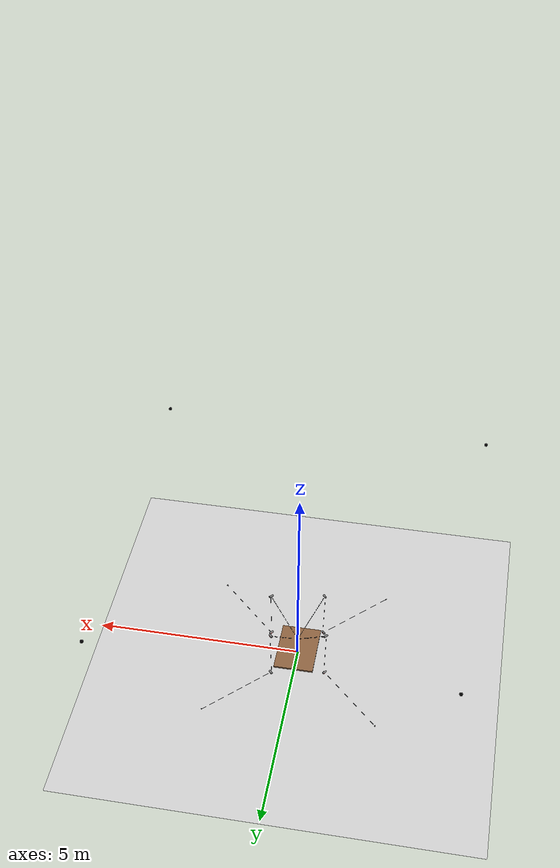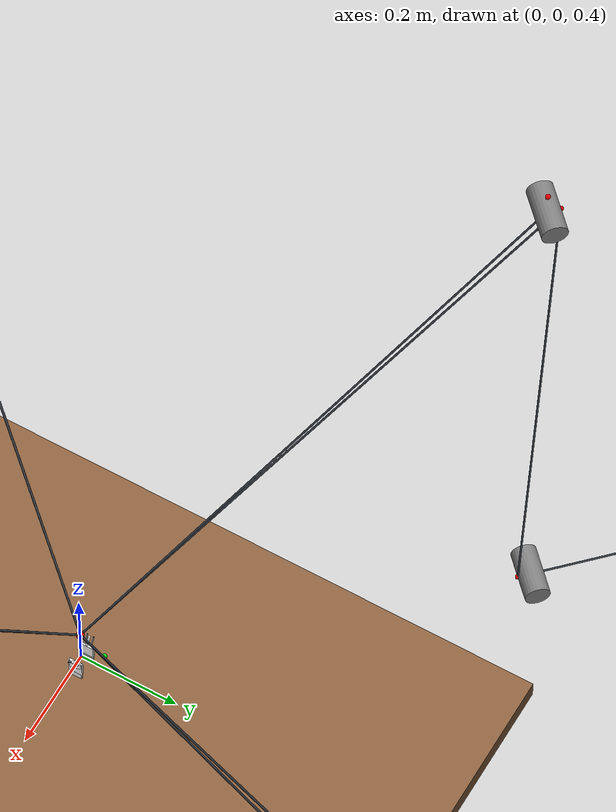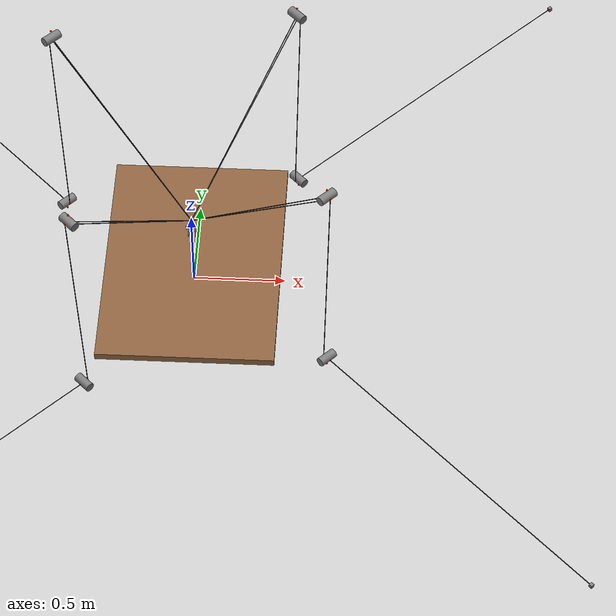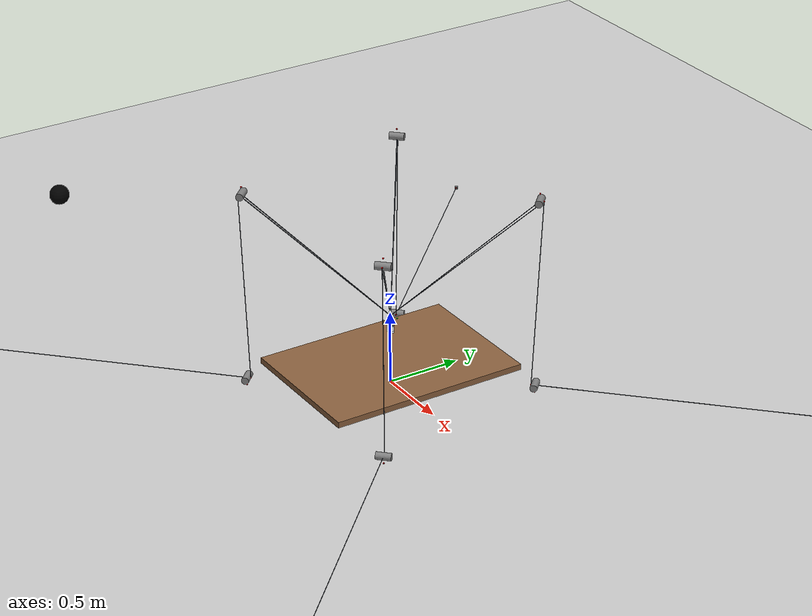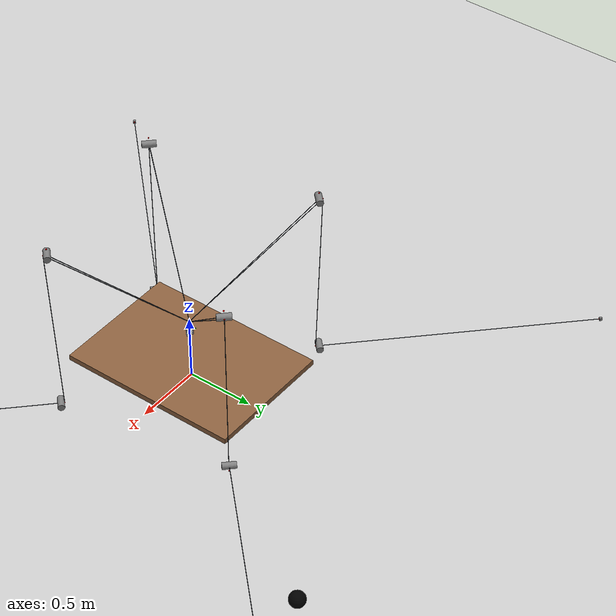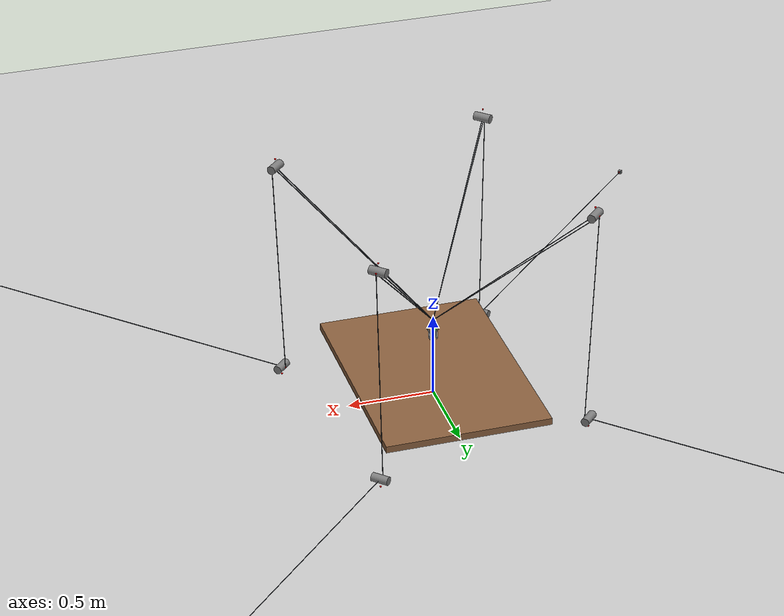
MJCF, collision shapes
<mujoco model="cdpr_mjwarp_smoke">
  <option>
    <flag multiccd="disable" nativeccd="disable"/>
  </option>
  <include file="cdpr.xml"/>
  <include file="cdpr_mjwarp_object_slots.xml"/>
  <asset>
    <texture name="mjwarp_skybox" type="skybox" builtin="gradient"
             rgb1="0.16 0.25 0.34" rgb2="0.012 0.018 0.030"
             width="256" height="1536"/>
    <texture name="mjwarp_desk_tex_0" type="2d" builtin="checker"
             rgb1="0.46 0.31 0.20" rgb2="0.63 0.45 0.29" width="128" height="128"/>
    <texture name="mjwarp_desk_tex_1" type="2d" builtin="checker"
             rgb1="0.25 0.25 0.25" rgb2="0.48 0.48 0.48" width="128" height="128"/>
    <texture name="mjwarp_desk_tex_2" type="2d" builtin="checker"
             rgb1="0.12 0.29 0.38" rgb2="0.24 0.48 0.56" width="128" height="128"/>
    <texture name="mjwarp_desk_tex_3" type="2d" builtin="checker"
             rgb1="0.47 0.44 0.34" rgb2="0.70 0.66 0.51" width="128" height="128"/>
    <texture name="mjwarp_desk_tex_4" type="2d" builtin="checker"
             rgb1="0.31 0.16 0.12" rgb2="0.55 0.28 0.20" width="128" height="128"/>
    <texture name="mjwarp_desk_tex_5" type="2d" builtin="checker"
             rgb1="0.22 0.33 0.20" rgb2="0.42 0.55 0.34" width="128" height="128"/>
    <texture name="mjwarp_desk_tex_6" type="2d" builtin="checker"
             rgb1="0.33 0.24 0.38" rgb2="0.54 0.42 0.60" width="128" height="128"/>
    <material name="mjwarp_desk_mat_0" texture="mjwarp_desk_tex_0" texrepeat="12 12" texuniform="true"/>
    <material name="mjwarp_desk_mat_1" texture="mjwarp_desk_tex_1" texrepeat="12 12" texuniform="true"/>
    <material name="mjwarp_desk_mat_2" texture="mjwarp_desk_tex_2" texrepeat="12 12" texuniform="true"/>
    <material name="mjwarp_desk_mat_3" texture="mjwarp_desk_tex_3" texrepeat="12 12" texuniform="true"/>
    <material name="mjwarp_desk_mat_4" texture="mjwarp_desk_tex_4" texrepeat="12 12" texuniform="true"/>
    <material name="mjwarp_desk_mat_5" texture="mjwarp_desk_tex_5" texrepeat="12 12" texuniform="true"/>
    <material name="mjwarp_desk_mat_6" texture="mjwarp_desk_tex_6" texrepeat="12 12" texuniform="true"/>
  </asset>
  <worldbody>
    <!-- The finite plane is the textured render surface. MJWarp 3.10 samples
         UVs for planes but not boxes, so the physical box stays collision-only. -->
    <geom name="mjwarp_desk_surface_visual" type="plane" pos="0 0 0.1502"
          size="0.48 0.68 0.001" material="mjwarp_desk_mat_0"
          contype="0" conaffinity="0" group="2"/>
    <!-- Portable physical desk top matching the active support height. -->
    <geom name="mjwarp_desk_surface" type="box" pos="0 0 0.13"
          size="0.48 0.68 0.02" material="mjwarp_desk_mat_0"
          contype="4" conaffinity="1" condim="3" group="3"
          friction="0.9 0.01 0.001" solref="0.008 1"
          solimp="0.90 0.95 0.001" margin="0.001"/>
    <geom name="mjwarp_cable_visual_1" type="capsule"
          fromto="-0.535 -0.755 1.309  0 0 0.48" size="0.002"
          rgba="0.22 0.24 0.27 0.90" contype="0" conaffinity="0" group="4"/>
    <geom name="mjwarp_cable_visual_2" type="capsule"
          fromto="0.755 -0.525 1.309  0 0 0.48" size="0.002"
          rgba="0.22 0.24 0.27 0.90" contype="0" conaffinity="0" group="4"/>
    <geom name="mjwarp_cable_visual_3" type="capsule"
          fromto="0.535 0.755 1.309  0 0 0.48" size="0.002"
          rgba="0.22 0.24 0.27 0.90" contype="0" conaffinity="0" group="4"/>
    <geom name="mjwarp_cable_visual_4" type="capsule"
          fromto="-0.755 0.525 1.309  0 0 0.48" size="0.002"
          rgba="0.22 0.24 0.27 0.90" contype="0" conaffinity="0" group="4"/>
  </worldbody>
</mujoco>

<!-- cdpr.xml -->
<mujoco>
  <compiler autolimits="true"/>
  <default>
    <site type="sphere" rgba="1 0 0 1" size="0.005"/>
    <tendon rgba="0.22 0.24 0.27 0.90" width="0.002"/>
    <default class="gripper_surface">
      <geom contype="0" conaffinity="0" group="1" material="gripper_surface_material"
            rgba="0.94 0.94 0.94 1"/>
    </default>
    <default class="gripper_edge">
      <geom contype="0" conaffinity="0" group="1" rgba="0.10 0.12 0.14 1"/>
    </default>
    <default class="finger_pad_collision">
      <geom contype="2" conaffinity="1" group="3" condim="4"
            friction="3.0 0.08 0.003" solref="0.005 1"
            solimp="0.95 0.99 0.001" margin="0.001"
            rgba="0.94 0.94 0.94 1"/>
    </default>
  </default>
  <visual>
    <headlight ambient=".16 .16 .16"
               diffuse=".62 .62 .62"
               specular=".08 .08 .08"/>
    <rgba haze=".035 .050 .075 1"/>
  </visual>

  <asset>
    <material name="gripper_surface_material" rgba="1 1 1 1"
              specular="0.35" shininess="0.45" reflectance="0.08"/>
    <!-- Real CAD base, converted from the supplied ASCII STL to binary STL for MuJoCo. -->
    <mesh name="real_gripper_base" file="meshes/base2.stl"
          scale="0.00055 0.00055 0.00055"/>
  </asset>

  <worldbody>
    <light name="side_light"
         pos="1.0 -1.0 2.0"
         dir="-1 1 -1"
         ambient="0.04 0.04 0.04"
         diffuse="0.42 0.42 0.42"
         specular="0.06 0.06 0.06"
         directional="true"
         castshadow="false"/>
    <light name="fill_light"
         pos="-1.0 -0.8 1.7"
         dir="1 0.8 -1"
         ambient="0.05 0.05 0.05"
         diffuse="0.32 0.32 0.32"
         specular="0.03 0.03 0.03"
         directional="true"
         castshadow="false"/>
    <camera name="overview" mode="fixed" pos="0 -1.299 0.85"
            xyaxes="1 0 0 0 0.5 0.8660254" fovy="45"/>

    <body name="rotor_1_up" pos="-0.535 -0.755 1.309" euler="90 45 0">
      <geom name="rotor_1_up" type="cylinder" size=".025 .05"/>
      <site name="top_main_site_1" pos="-0.025 0.00001 0" />
      <site name="top_sidesite_1" pos="0 0.05 0" />

      <body name="rotor_1_down" pos="0 -1.309 0" euler="0 0 0">
        <geom name="rotor_1_down" type="cylinder" size=".025 .05"/>
        <site name="bot_main_site_1" pos="0.025 -0.00001 0" />
        <site name="bot_sidesite_1" pos="0 -0.05 0" />

        <body name="slider_1" pos="-2 0 0">
          <inertial pos="0 0 0" mass="2" diaginertia="0.0001 0.0001 0.0001" />
          <joint name="slider_1" type="slide" axis="-1 0 0" damping="5"/>
          <geom type="box" size="0.01 0.01 0.01" />
          <site name="slider_1" pos="0.01 0 0"/>
        </body>
      </body>
    </body>

    <body name="rotor_2_up" pos="0.755 -0.525 1.309" euler="90 135 0">
      <geom name="rotor_2_up" type="cylinder" size=".025 .05"/>
      <site name="top_main_site_2" pos="-0.025 0.00001 0" />
      <site name="top_sidesite_2" pos="0 0.05 0" />

      <body name="rotor_2_down" pos="0 -1.309 0" euler="0 0 0">
        <geom name="rotor_2_down" type="cylinder" size=".025 .05"/>
        <site name="bot_main_site_2" pos="0.025 -0.00001 0" />
        <site name="bot_sidesite_2" pos="0 -0.05 0" />

        <body name="slider_2" pos="-2 0 0">
          <inertial pos="0 0 0" mass="2" diaginertia="0.0001 0.0001 0.0001" />
          <joint name="slider_2" type="slide" axis="-1 0 0" damping="5"/>
          <geom type="box" size="0.01 0.01 0.01" />
          <site name="slider_2" pos="0.01 0 0"/>
        </body>
      </body>
    </body>

    <body name="rotor_3_up" pos="0.535 0.755 1.309" euler="90 -135 0">
      <geom name="rotor_3_up" type="cylinder" size=".025 .05"/>
      <site name="top_main_site_3" pos="-0.025 0.00001 0" />
      <site name="top_sidesite_3" pos="0 0.05 0" />

      <body name="rotor_3_down" pos="0 -1.309 0" euler="0 0 0">
        <geom name="rotor_3_down" type="cylinder" size=".025 .05"/>
        <site name="bot_main_site_3" pos="0.025 -0.00001 0" />
        <site name="bot_sidesite_3" pos="0 -0.05 0" />

        <body name="slider_3" pos="-2 0 0">
          <inertial pos="0 0 0" mass="2" diaginertia="0.0001 0.0001 0.0001" />
          <joint name="slider_3" type="slide" axis="-1 0 0" damping="5"/>
          <geom type="box" size="0.01 0.01 0.01" />
          <site name="slider_3" pos="0.01 0 0"/>
        </body>
      </body>
    </body>

    <body name="rotor_4_up" pos="-0.755 0.525 1.309" euler="90  -45 0">
      <geom name="rotor_4_up" type="cylinder" size=".025 .05"/>
      <site name="top_main_site_4" pos="-0.025 0.00001 0" />
      <site name="top_sidesite_4" pos="0 0.05 0" />

      <body name="rotor_4_down" pos="0 -1.309 0" euler="0 0 0">
        <geom name="rotor_4_down" type="cylinder" size=".025 .05"/>
        <site name="bot_main_site_4" pos="0.025 -0.00001 0" />
        <site name="bot_sidesite_4" pos="0 -0.05 0" />

        <body name="slider_4" pos="-2 0 0">
          <inertial pos="0 0 0" mass="2" diaginertia="0.0001 0.0001 0.0001" />
          <joint name="slider_4" type="slide" axis="-1 0 0" damping="5"/>
          <geom type="box" size="0.01 0.01 0.01" />
          <site name="slider_4" pos="0.01 0 0"/>
        </body>
      </body>
    </body>

    <!-- Floor -->
    <geom name="floor" type="plane" size="5 5 0.1" pos="0 0 -0.1" rgba="0.8 0.8 0.8 1"/>

    <!-- Red square object on floor -->

    <!-- End-effector -->
    <!-- ===== Cable-suspended base (translation+rotation from cables) ===== -->
    <body name="ee_base" pos="0 0 0.40">
      <joint name="ee_free" type="free" damping="3" armature="0.002"/>
      <inertial pos="0 0 0" mass="1.2" diaginertia="0.02 0.02 0.02"/>

      <!-- Cable attachment point from the reference image; coordinates are unchanged. -->
      <site name="topcenter" pos="0 0 0.08" size="0.008" rgba="1 0 0 1"/>

      <!-- ===== NEW: intermediate yaw body ===== -->
      <body name="yaw_frame" pos="0 0 0">
        <!-- must have inertial because it has a joint -->
        <inertial pos="0 0 0" mass="0.15" diaginertia="0.0006 0.0006 0.0006"/>
        <joint name="ee_yaw" type="hinge" axis="0 0 1"
              limited="true" range="-180 180" damping="0.4"/>

        <!-- ===== Orientation stabilizer under yaw ===== -->
        <body name="ee_stab" pos="0 0 0">
          <inertial pos="0 0 0" mass="0.6" diaginertia="0.005 0.005 0.005"/>
          <joint name="ee_ball" type="ball" damping="6" stiffness="80" armature="0.02" limited="false"/>

          <!-- Camera follows the lowered mesh while retaining its clear downward view. -->
          <body name="camera_body" pos="0 0.05 0.045">
            <site name="ee_camera_marker" type="sphere" size="0.005" rgba="0 1 0 1"/>
            <camera name="ee_camera" mode="fixed" fovy="60" euler="-15 0 0"/>
          </body>

          <!-- Gripper -->
          <body name="ee_platform" pos="0 0 0.08">
            <inertial pos="0 0 0" mass="0.35" diaginertia="0.003 0.003 0.003"/>

            <!-- The supplied base is lowered so topcenter lies on top of the circular
                 housing; its camera mount still points toward camera_body at +Y. -->
            <geom name="palm" class="gripper_surface" type="mesh" mesh="real_gripper_base"
                  pos="0 0 -0.025" euler="180 0 0"/>

            <!-- The synchronized slide-joint control contract is unchanged. -->
            <body name="finger_left_car" pos="0.02 0 0">
              <inertial pos="0 0 0" mass="0.08" diaginertia="0.0002 0.0002 0.00015"/>
              <joint name="finger_l" type="slide" axis="1 0 0" limited="true" range="0 0.03" damping="3.0"/>
              <geom name="finger_l_shoulder" class="gripper_surface" type="capsule"
                    fromto="0.010 0 -0.055  0 0 -0.070" size="0.0025"/>
              <geom name="finger_l_shoulder_edge_front" class="gripper_edge" type="capsule"
                    fromto="0.014 -0.0065 -0.0565  0.004 -0.0065 -0.0715" size="0.0013"/>
              <geom name="finger_l_shoulder_edge_back" class="gripper_edge" type="capsule"
                    fromto="0.014 0.0065 -0.0565  0.004 0.0065 -0.0715" size="0.0013"/>
              <geom name="finger_l_link" class="gripper_surface" type="box"
                    size="0.0025 0.012 0.0175" pos="0 0 -0.0875"/>
              <geom name="finger_l_tip" class="gripper_surface" type="box"
                    size="0.0025 0.012 0.007" pos="0 0 -0.112"/>
              <geom name="finger_l_edge_front_outer" class="gripper_edge" type="capsule"
                    fromto="0.0018 -0.0125 -0.0695  0.0018 -0.0125 -0.1195" size="0.0007"/>
              <geom name="finger_l_edge_front_inner" class="gripper_edge" type="capsule"
                    fromto="-0.0018 -0.0125 -0.0695  -0.0018 -0.0125 -0.1195" size="0.0007"/>
              <geom name="finger_l_edge_back_outer" class="gripper_edge" type="capsule"
                    fromto="0.0018 0.0125 -0.0695  0.0018 0.0125 -0.1195" size="0.0007"/>
              <geom name="finger_l_edge_back_inner" class="gripper_edge" type="capsule"
                    fromto="-0.0018 0.0125 -0.0695  -0.0018 0.0125 -0.1195" size="0.0007"/>
              <geom name="finger_l_edge_front_bottom" class="gripper_edge" type="capsule"
                    fromto="-0.0018 -0.0125 -0.1195  0.0018 -0.0125 -0.1195" size="0.0007"/>
              <geom name="finger_l_edge_back_bottom" class="gripper_edge" type="capsule"
                    fromto="-0.0018 0.0125 -0.1195  0.0018 0.0125 -0.1195" size="0.0007"/>
              <geom name="left_finger_pad" class="finger_pad_collision" type="box"
                    size="0.0025 0.014 0.0175" pos="0 0 -0.0875"/>
            </body>

            <body name="finger_right_car" pos="-0.02 0 0">
              <inertial pos="0 0 0" mass="0.08" diaginertia="0.0002 0.0002 0.00015"/>
              <joint name="finger_r" type="slide" axis="-1 0 0" limited="true" range="0 0.03" damping="3.0"/>
              <geom name="finger_r_shoulder" class="gripper_surface" type="capsule"
                    fromto="-0.010 0 -0.055  0 0 -0.070" size="0.0025"/>
              <geom name="finger_r_shoulder_edge_front" class="gripper_edge" type="capsule"
                    fromto="-0.014 -0.0065 -0.0565  -0.004 -0.0065 -0.0715" size="0.0013"/>
              <geom name="finger_r_shoulder_edge_back" class="gripper_edge" type="capsule"
                    fromto="-0.014 0.0065 -0.0565  -0.004 0.0065 -0.0715" size="0.0013"/>
              <geom name="finger_r_link" class="gripper_surface" type="box"
                    size="0.0025 0.012 0.0175" pos="0 0 -0.0875"/>
              <geom name="finger_r_tip" class="gripper_surface" type="box"
                    size="0.0025 0.012 0.007" pos="0 0 -0.112"/>
              <geom name="finger_r_edge_front_outer" class="gripper_edge" type="capsule"
                    fromto="-0.0018 -0.0125 -0.0695  -0.0018 -0.0125 -0.1195" size="0.0007"/>
              <geom name="finger_r_edge_front_inner" class="gripper_edge" type="capsule"
                    fromto="0.0018 -0.0125 -0.0695  0.0018 -0.0125 -0.1195" size="0.0007"/>
              <geom name="finger_r_edge_back_outer" class="gripper_edge" type="capsule"
                    fromto="-0.0018 0.0125 -0.0695  -0.0018 0.0125 -0.1195" size="0.0007"/>
              <geom name="finger_r_edge_back_inner" class="gripper_edge" type="capsule"
                    fromto="0.0018 0.0125 -0.0695  0.0018 0.0125 -0.1195" size="0.0007"/>
              <geom name="finger_r_edge_front_bottom" class="gripper_edge" type="capsule"
                    fromto="-0.0018 -0.0125 -0.1195  0.0018 -0.0125 -0.1195" size="0.0007"/>
              <geom name="finger_r_edge_back_bottom" class="gripper_edge" type="capsule"
                    fromto="-0.0018 0.0125 -0.1195  0.0018 0.0125 -0.1195" size="0.0007"/>
              <geom name="right_finger_pad" class="finger_pad_collision" type="box"
                    size="0.0025 0.014 0.0175" pos="0 0 -0.0875"/>
            </body>
          </body>
        </body>
      </body>
    </body>

  </worldbody>

  <equality>
    <!-- Enforce q_r = q_l  (10 poly coefficients: a0..a9). q2 = a0 + a1*q1 + ... -->
    <joint joint1="finger_l" joint2="finger_r" polycoef="0 1 0 0 0"/>
  </equality>

  <tendon>
    <spatial name="rope_1" limited="true" range="0 4.235" stiffness="0" damping="0" >
      <site site="topcenter" />
      <geom geom="rotor_1_up" sidesite="top_sidesite_1" />
      <site site="top_main_site_1" />
      <site site="bot_main_site_1" />
      <geom geom="rotor_1_down" sidesite="bot_sidesite_1" />
      <site site="slider_1" />
    </spatial>

    <spatial name="rope_2" limited="true" range="0 4.235" stiffness="0" damping="0" >
      <site site="topcenter" />
      <geom geom="rotor_2_up" sidesite="top_sidesite_2" />
      <site site="top_main_site_2" />
      <site site="bot_main_site_2" />
      <geom geom="rotor_2_down" sidesite="bot_sidesite_2" />
      <site site="slider_2" />
    </spatial>

    <spatial name="rope_3" limited="true" range="0 4.235" stiffness="0" damping="0" >
      <site site="topcenter" />
      <geom geom="rotor_3_up" sidesite="top_sidesite_3" />
      <site site="top_main_site_3" />
      <site site="bot_main_site_3" />
      <geom geom="rotor_3_down" sidesite="bot_sidesite_3" />
      <site site="slider_3" />
    </spatial>

    <spatial name="rope_4" limited="true" range="0 4.235" stiffness="0" damping="0" >
      <site site="topcenter" />
      <geom geom="rotor_4_up" sidesite="top_sidesite_4" />
      <site site="top_main_site_4" />
      <site site="bot_main_site_4" />
      <geom geom="rotor_4_down" sidesite="bot_sidesite_4" />
      <site site="slider_4" />
    </spatial>
  </tendon>

  <actuator>
    <!-- Tuned for the 2 ms MJWarp timestep: the previous kv=300 setting was
         heavily overdamped and left the platform far behind policy targets. -->
    <position name="slider_1_pos" joint="slider_1" ctrlrange="-4.5 4.5" kp="6000" kv="100"/>
    <position name="slider_2_pos" joint="slider_2" ctrlrange="-4.5 4.5" kp="6000" kv="100"/>
    <position name="slider_3_pos" joint="slider_3" ctrlrange="-4.5 4.5" kp="6000" kv="100"/>
    <position name="slider_4_pos" joint="slider_4" ctrlrange="-4.5 4.5" kp="6000" kv="100"/>
    <!-- Tool yaw and gripper -->
    <position name="act_ee_yaw" joint="ee_yaw" kp="30" ctrlrange="-180 180"/>
    <!-- Normalized gripper target: ctrl=0 is closed, ctrl=1 maps to 0.03 m finger travel. -->
    <position name="act_gripper" joint="finger_l" kp="5.0" kv="0.1"
              gear="33.3333333333" ctrlrange="0 1"/>
  </actuator>

  <sensor>
    <framepos objtype="camera" objname="overview"/>
    <framequat objtype="camera" objname="overview"/>
    <framepos objtype="camera" objname="ee_camera"/>
    <framequat objtype="camera" objname="ee_camera"/>
  </sensor>
</mujoco>

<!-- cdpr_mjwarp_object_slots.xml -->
<mujoco model="cdpr_mjwarp_object_slots">
  <asset>
    <mesh name="robocasa_apple_visual_mesh"
          file="../../../assets/externals/robocasa/objects/objaverse/apple/apple_20/visual/model_normalized_0.obj"
          scale="0.07 0.07 0.07"/>
    <texture name="robocasa_apple_texture" type="2d"
             file="../../../assets/externals/robocasa/objects/objaverse/apple/apple_20/visual/image0.png"/>
    <material name="robocasa_apple_material" texture="robocasa_apple_texture"
              specular="0.12" shininess="0.2"/>

    <mesh name="robocasa_banana_visual_mesh"
          file="../../../assets/externals/robocasa/objects/objaverse/banana/banana_19/visual/model_normalized_0.obj"
          scale="0.18 0.18 0.18"
          refquat="0.5 0.5 0.5 0.5"/>
    <texture name="robocasa_banana_texture" type="2d"
             file="../../../assets/externals/robocasa/objects/objaverse/banana/banana_19/visual/image0.png"/>
    <material name="robocasa_banana_material" texture="robocasa_banana_texture"
              specular="0.12" shininess="0.2"/>

    <mesh name="robocasa_carrot_visual_mesh"
          file="../../../assets/externals/robocasa/objects/objaverse/carrot/carrot_1/visual/model_normalized_0.obj"
          scale="0.155 0.155 0.155"
          refquat="0.65328148 0.65328148 0.27059805 -0.27059805"/>
    <texture name="robocasa_carrot_texture" type="2d"
             file="../../../assets/externals/robocasa/objects/objaverse/carrot/carrot_1/visual/image0.png"/>
    <material name="robocasa_carrot_material" texture="robocasa_carrot_texture"
              specular="0.12" shininess="0.2"/>

    <mesh name="robocasa_bell_pepper_visual_mesh"
          file="../../../assets/externals/robocasa/objects/objaverse/bell_pepper/bell_pepper_0/visual/model_normalized_0.obj"
          scale="0.11 0.11 0.11"
          refquat="0.70710678 0.70710678 0 0"/>
    <texture name="robocasa_bell_pepper_texture" type="2d"
             file="../../../assets/externals/robocasa/objects/objaverse/bell_pepper/bell_pepper_0/visual/image0.png"/>
    <material name="robocasa_bell_pepper_material"
              texture="robocasa_bell_pepper_texture"
              specular="0.12" shininess="0.2"/>

    <mesh name="robocasa_tomato_visual_mesh"
          file="../../../assets/externals/robocasa/objects/objaverse/tomato/tomato_8/visual/model_normalized_0.obj"
          scale="0.06 0.06 0.06"/>
    <texture name="robocasa_tomato_texture" type="2d"
             file="../../../assets/externals/robocasa/objects/objaverse/tomato/tomato_8/visual/image0.png"/>
    <material name="robocasa_tomato_material" texture="robocasa_tomato_texture"
              specular="0.12" shininess="0.2"/>

    <mesh name="robocasa_orange_visual_mesh"
          file="../../../assets/externals/robocasa/objects/objaverse/orange/orange_4/visual/model_normalized_0.obj"
          scale="0.07 0.07 0.07"/>
    <texture name="robocasa_orange_texture" type="2d"
             file="../../../assets/externals/robocasa/objects/objaverse/orange/orange_4/visual/image0.png"/>
    <material name="robocasa_orange_material" texture="robocasa_orange_texture"
              specular="0.12" shininess="0.2"/>

    <mesh name="robocasa_potato_visual_mesh"
          file="../../../assets/externals/robocasa/objects/objaverse/potato/potato_3/visual/model_normalized_0.obj"
          scale="0.115 0.115 0.115"/>
    <texture name="robocasa_potato_texture" type="2d"
             file="../../../assets/externals/robocasa/objects/objaverse/potato/potato_3/visual/image0.png"/>
    <material name="robocasa_potato_material" texture="robocasa_potato_texture"
              specular="0.12" shininess="0.2"/>

    <mesh name="robocasa_mug_visual_mesh"
          file="../../../assets/externals/robocasa/objects/objaverse/mug/mug_1/visual/model_normalized_0.obj"
          scale="0.115 0.115 0.115"
          refquat="-0.70710678 0 0 0.70710678"/>
    <texture name="robocasa_mug_texture" type="2d"
             file="../../../assets/externals/robocasa/objects/objaverse/mug/mug_1/visual/image0.png"/>
    <material name="robocasa_mug_material" texture="robocasa_mug_texture"
              specular="0.12" shininess="0.2"/>

    <mesh name="robocasa_plate_visual_mesh"
          file="../../../assets/externals/robocasa/objects/objaverse/plate/plate_12/visual/model_normalized_0.obj"
          scale="0.185 0.185 0.185"/>
    <texture name="robocasa_plate_texture" type="2d"
             file="../../../assets/externals/robocasa/objects/objaverse/plate/plate_12/visual/image0.png"/>
    <material name="robocasa_plate_material" texture="robocasa_plate_texture"
              specular="0.12" shininess="0.2"/>

    <mesh name="robocasa_bowl_visual_mesh"
          file="../../../assets/externals/robocasa/objects/objaverse/bowl/bowl_1/visual/model_normalized_0.obj"
          scale="0.12 0.12 0.12"/>
    <texture name="robocasa_bowl_texture" type="2d"
             file="../../../assets/externals/robocasa/objects/objaverse/bowl/bowl_1/visual/image0.png"/>
    <material name="robocasa_bowl_material" texture="robocasa_bowl_texture"
              specular="0.12" shininess="0.2"/>
  </asset>
  <default>
    <default class="mjwarp_object_collision">
      <geom contype="1" conaffinity="7" group="3" condim="3"
            friction="0.95 0.3 0.1" solref="0.008 1"
            solimp="0.90 0.95 0.001" margin="0.001"
            rgba="0 0 0 0"/>
    </default>
    <default class="mjwarp_object_visual">
      <geom type="mesh" contype="0" conaffinity="0" group="1"/>
    </default>
  </default>
  <worldbody>
    <body name="mjwarp_object_slot_0" pos="-4 -4 4">
      <joint name="mjwarp_object_slot_0_free" type="free" damping="0.01"/>
      <inertial pos="0 0 0" mass="0.11"
                diaginertia="0.000064 0.000064 0.000064"/>
      <geom name="mjwarp_slot_0_visual" class="mjwarp_object_visual"
            mesh="robocasa_apple_visual_mesh" material="robocasa_apple_material"/>
      <geom name="mjwarp_slot_0_sphere_0" class="mjwarp_object_collision"
            type="sphere" size="0.038"/>
      <geom name="mjwarp_slot_0_sphere_1" class="mjwarp_object_collision"
            type="sphere" size="0.0001" pos="0 0 10"/>
      <geom name="mjwarp_slot_0_sphere_2" class="mjwarp_object_collision"
            type="sphere" size="0.0001" pos="0 0 10"/>
      <geom name="mjwarp_slot_0_cylinder_0" class="mjwarp_object_collision"
            type="cylinder" size="0.0001 0.0001" pos="0 0 10"/>
      <geom name="mjwarp_slot_0_cylinder_1" class="mjwarp_object_collision"
            type="cylinder" size="0.0001 0.0001" pos="0 0 10"/>
      <geom name="mjwarp_slot_0_cylinder_2" class="mjwarp_object_collision"
            type="cylinder" size="0.0001 0.0001" pos="0 0 10"/>
      <geom name="mjwarp_slot_0_box_0" class="mjwarp_object_collision"
            type="box" size="0.0001 0.0001 0.0001" pos="0 0 10"/>
      <geom name="mjwarp_slot_0_box_1" class="mjwarp_object_collision"
            type="box" size="0.0001 0.0001 0.0001" pos="0 0 10"/>
      <geom name="mjwarp_slot_0_box_2" class="mjwarp_object_collision"
            type="box" size="0.0001 0.0001 0.0001" pos="0 0 10"/>
      <geom name="mjwarp_slot_0_box_3" class="mjwarp_object_collision"
            type="box" size="0.0001 0.0001 0.0001" pos="0 0 10"/>
      <geom name="mjwarp_slot_0_capsule_0" class="mjwarp_object_collision"
            type="capsule" size="0.0001 0.0001" pos="0 0 10"/>
    </body>
    <body name="mjwarp_object_slot_1" pos="-4 4 4">
      <joint name="mjwarp_object_slot_1_free" type="free" damping="0.01"/>
      <inertial pos="0 0 0" mass="0.11"
                diaginertia="0.000064 0.000064 0.000064"/>
      <geom name="mjwarp_slot_1_visual" class="mjwarp_object_visual"
            mesh="robocasa_apple_visual_mesh" material="robocasa_apple_material"/>
      <geom name="mjwarp_slot_1_sphere_0" class="mjwarp_object_collision"
            type="sphere" size="0.038"/>
      <geom name="mjwarp_slot_1_sphere_1" class="mjwarp_object_collision"
            type="sphere" size="0.0001" pos="0 0 10"/>
      <geom name="mjwarp_slot_1_sphere_2" class="mjwarp_object_collision"
            type="sphere" size="0.0001" pos="0 0 10"/>
      <geom name="mjwarp_slot_1_cylinder_0" class="mjwarp_object_collision"
            type="cylinder" size="0.0001 0.0001" pos="0 0 10"/>
      <geom name="mjwarp_slot_1_cylinder_1" class="mjwarp_object_collision"
            type="cylinder" size="0.0001 0.0001" pos="0 0 10"/>
      <geom name="mjwarp_slot_1_cylinder_2" class="mjwarp_object_collision"
            type="cylinder" size="0.0001 0.0001" pos="0 0 10"/>
      <geom name="mjwarp_slot_1_box_0" class="mjwarp_object_collision"
            type="box" size="0.0001 0.0001 0.0001" pos="0 0 10"/>
      <geom name="mjwarp_slot_1_box_1" class="mjwarp_object_collision"
            type="box" size="0.0001 0.0001 0.0001" pos="0 0 10"/>
      <geom name="mjwarp_slot_1_box_2" class="mjwarp_object_collision"
            type="box" size="0.0001 0.0001 0.0001" pos="0 0 10"/>
      <geom name="mjwarp_slot_1_box_3" class="mjwarp_object_collision"
            type="box" size="0.0001 0.0001 0.0001" pos="0 0 10"/>
      <geom name="mjwarp_slot_1_capsule_0" class="mjwarp_object_collision"
            type="capsule" size="0.0001 0.0001" pos="0 0 10"/>
    </body>
    <body name="mjwarp_object_slot_2" pos="4 -4 4">
      <joint name="mjwarp_object_slot_2_free" type="free" damping="0.01"/>
      <inertial pos="0 0 0" mass="0.11"
                diaginertia="0.000064 0.000064 0.000064"/>
      <geom name="mjwarp_slot_2_visual" class="mjwarp_object_visual"
            mesh="robocasa_apple_visual_mesh" material="robocasa_apple_material"/>
      <geom name="mjwarp_slot_2_sphere_0" class="mjwarp_object_collision"
            type="sphere" size="0.038"/>
      <geom name="mjwarp_slot_2_sphere_1" class="mjwarp_object_collision"
            type="sphere" size="0.0001" pos="0 0 10"/>
      <geom name="mjwarp_slot_2_sphere_2" class="mjwarp_object_collision"
            type="sphere" size="0.0001" pos="0 0 10"/>
      <geom name="mjwarp_slot_2_cylinder_0" class="mjwarp_object_collision"
            type="cylinder" size="0.0001 0.0001" pos="0 0 10"/>
      <geom name="mjwarp_slot_2_cylinder_1" class="mjwarp_object_collision"
            type="cylinder" size="0.0001 0.0001" pos="0 0 10"/>
      <geom name="mjwarp_slot_2_cylinder_2" class="mjwarp_object_collision"
            type="cylinder" size="0.0001 0.0001" pos="0 0 10"/>
      <geom name="mjwarp_slot_2_box_0" class="mjwarp_object_collision"
            type="box" size="0.0001 0.0001 0.0001" pos="0 0 10"/>
      <geom name="mjwarp_slot_2_box_1" class="mjwarp_object_collision"
            type="box" size="0.0001 0.0001 0.0001" pos="0 0 10"/>
      <geom name="mjwarp_slot_2_box_2" class="mjwarp_object_collision"
            type="box" size="0.0001 0.0001 0.0001" pos="0 0 10"/>
      <geom name="mjwarp_slot_2_box_3" class="mjwarp_object_collision"
            type="box" size="0.0001 0.0001 0.0001" pos="0 0 10"/>
      <geom name="mjwarp_slot_2_capsule_0" class="mjwarp_object_collision"
            type="capsule" size="0.0001 0.0001" pos="0 0 10"/>
    </body>
    <body name="mjwarp_object_slot_3" pos="4 4 4">
      <joint name="mjwarp_object_slot_3_free" type="free" damping="0.01"/>
      <inertial pos="0 0 0" mass="0.11"
                diaginertia="0.000064 0.000064 0.000064"/>
      <geom name="mjwarp_slot_3_visual" class="mjwarp_object_visual"
            mesh="robocasa_apple_visual_mesh" material="robocasa_apple_material"/>
      <geom name="mjwarp_slot_3_sphere_0" class="mjwarp_object_collision"
            type="sphere" size="0.038"/>
      <geom name="mjwarp_slot_3_sphere_1" class="mjwarp_object_collision"
            type="sphere" size="0.0001" pos="0 0 10"/>
      <geom name="mjwarp_slot_3_sphere_2" class="mjwarp_object_collision"
            type="sphere" size="0.0001" pos="0 0 10"/>
      <geom name="mjwarp_slot_3_cylinder_0" class="mjwarp_object_collision"
            type="cylinder" size="0.0001 0.0001" pos="0 0 10"/>
      <geom name="mjwarp_slot_3_cylinder_1" class="mjwarp_object_collision"
            type="cylinder" size="0.0001 0.0001" pos="0 0 10"/>
      <geom name="mjwarp_slot_3_cylinder_2" class="mjwarp_object_collision"
            type="cylinder" size="0.0001 0.0001" pos="0 0 10"/>
      <geom name="mjwarp_slot_3_box_0" class="mjwarp_object_collision"
            type="box" size="0.0001 0.0001 0.0001" pos="0 0 10"/>
      <geom name="mjwarp_slot_3_box_1" class="mjwarp_object_collision"
            type="box" size="0.0001 0.0001 0.0001" pos="0 0 10"/>
      <geom name="mjwarp_slot_3_box_2" class="mjwarp_object_collision"
            type="box" size="0.0001 0.0001 0.0001" pos="0 0 10"/>
      <geom name="mjwarp_slot_3_box_3" class="mjwarp_object_collision"
            type="box" size="0.0001 0.0001 0.0001" pos="0 0 10"/>
      <geom name="mjwarp_slot_3_capsule_0" class="mjwarp_object_collision"
            type="capsule" size="0.0001 0.0001" pos="0 0 10"/>
    </body>
  </worldbody>
</mujoco>
